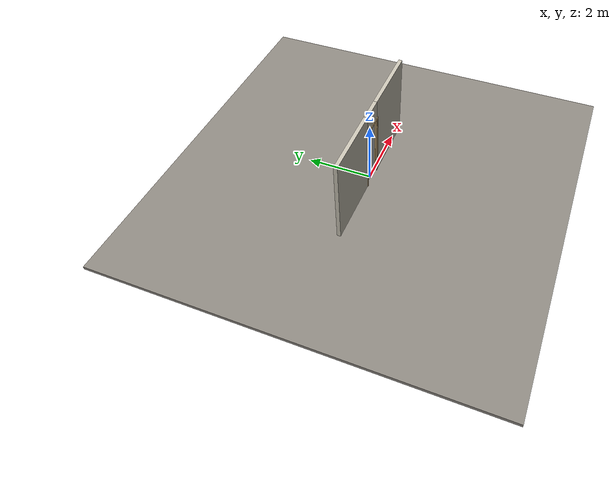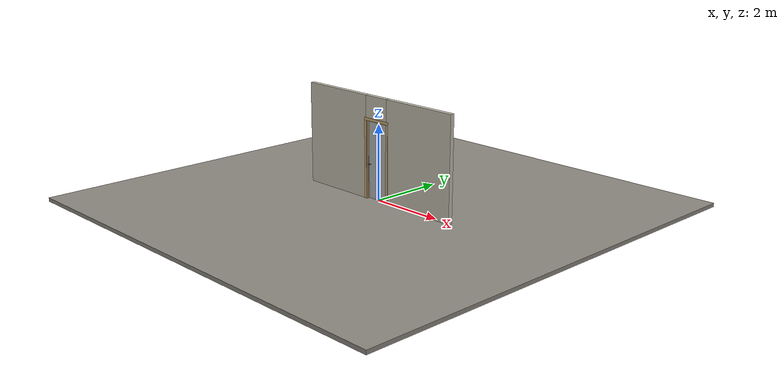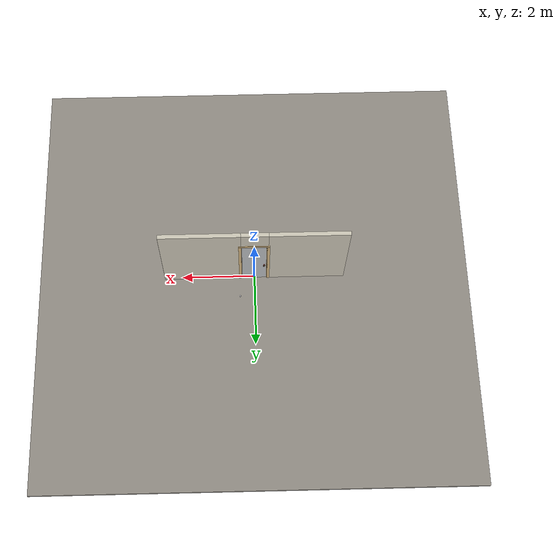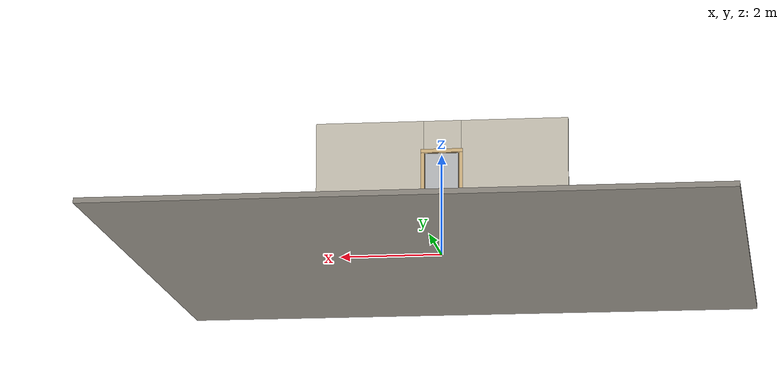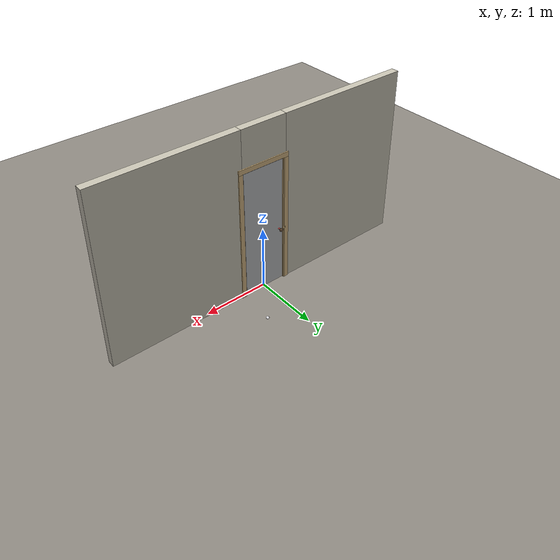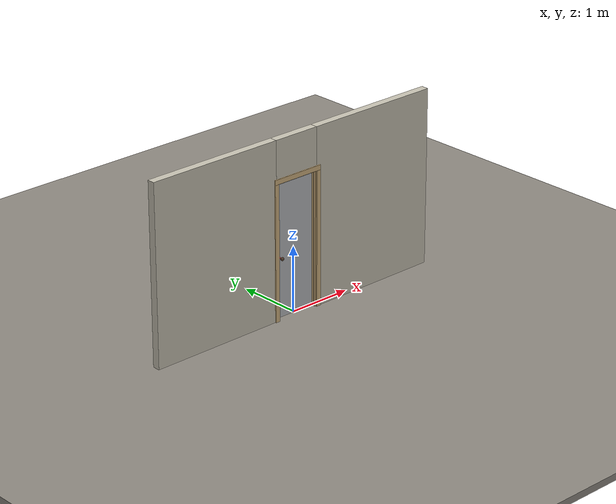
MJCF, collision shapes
<?xml version="1.0" ?>
<mujoco model="db0975_swing_single_full">
  <compiler angle="radian" meshdir="../../hardware" texturedir="../../textures" autolimits="true" inertiafromgeom="false"/>
  <option timestep="0.002" integrator="implicitfast" cone="elliptic" impratio="10" noslip_iterations="3">
    <flag multiccd="enable"/>
  </option>
  <size memory="16M"/>
  <default>
    <geom condim="4" solref="0.005 1" solimp="0.95 0.99 0.001"/>
    <joint solreflimit="0.005 1" solimplimit="0.95 0.99 0.001"/>
    <tendon solreflimit="0.005 1"/>
    <equality solref="0.002 1"/>
  </default>
  <visual>
    <headlight ambient="0.4 0.4 0.4" diffuse="0.7 0.7 0.7" specular="0.2 0.2 0.2"/>
    <quality shadowsize="4096"/>
    <map znear="0.01" zfar="60"/>
  </visual>
  <asset>
    <mesh name="hinge_e22b26c0c1" file="hinge_e22b26c0c1.obj"/>
    <mesh name="hinge_jamb_e1d088f8dc" file="hinge_jamb_e1d088f8dc.obj"/>
    <mesh name="knob_0ebdbe0e4b" file="knob_0ebdbe0e4b.obj"/>
    <material name="mat_floor" rgba="0.55 0.53 0.5 1" specular="0.2" shininess="0.15" reflectance="0"/>
    <material name="mat_wall" rgba="0.78 0.76 0.7 1" specular="0.2" shininess="0.1" reflectance="0"/>
    <material name="mat_leaf" rgba="0.72 0.73 0.74 1" specular="0.2" shininess="0.33" reflectance="0"/>
    <material name="mat_leaf_louver" rgba="0.612 0.62 0.629 1" specular="0.2" shininess="0.4" reflectance="0"/>
    <material name="mat_hinge" rgba="0.65 0.66 0.68 1" specular="0.74" shininess="0.5" reflectance="0.36"/>
    <material name="mat_op_bronze" rgba="0.3 0.22 0.15 1" specular="0.74" shininess="0.5" reflectance="0.36"/>
    <material name="mat_trim" rgba="0.85 0.66 0.3 1" specular="0.8" shininess="0.75" reflectance="0.4"/>
    <material name="mat_bolt" rgba="0.85 0.66 0.3 1" specular="0.8" shininess="0.75" reflectance="0.4"/>
    <material name="mat_frame" rgba="0.82 0.7 0.5 1" specular="0.2" shininess="0.45" reflectance="0"/>
    <material name="mat_seal" rgba="0.1 0.1 0.1 1" specular="0.2" shininess="0.1" reflectance="0"/>
    <material name="mat_stop" rgba="0.9 0.9 0.92 1" specular="0.8" shininess="0.9" reflectance="0.4"/>
    <texture name="skybox" type="skybox" builtin="gradient" rgb1="0.6 0.7 0.85" rgb2="0.9 0.92 0.95" width="256" height="256"/>
  </asset>
  <worldbody>
    <light name="sun" pos="1.5 -2.5 4" dir="-0.3 0.5 -0.8" directional="true" diffuse="0.8 0.8 0.8" specular="0.3 0.3 0.3" castshadow="true"/>
    <light name="fill" pos="-1.5 2.5 3" dir="0.3 -0.5 -0.7" directional="true" diffuse="0.35 0.35 0.4" castshadow="false"/>
    <camera name="robot_view" pos="0 -2.570688 1.734312" xyaxes="1 0 0 0 0.26963 0.962964" fovy="52"/>
    <camera name="far_view" pos="0 2.513687 1.734312" xyaxes="-1 0 0 0 -0.26963 0.962964" fovy="52"/>
    <camera name="iso" pos="-1.932062 -2.163938 2.141063" xyaxes="0.741536 -0.670913 0 0.242917 0.268487 0.932151" fovy="46"/>
    <camera name="detail_handle" pos="-0.089 -0.874 1.194" xyaxes="0.97561 0.219512 0 -0.070934 0.315262 0.94635" fovy="38"/>
    <geom name="floor" type="box" size="6 6 0.05" pos="0 0 -0.05" material="mat_floor" group="0" contype="1" conaffinity="1" friction="0.8 0.005 0.0001" density="2400"/>
    <geom name="wall_left" type="box" size="1.0585 0.0575 1.35" pos="-1.4415 -0.0285 1.35" material="mat_wall" group="0" contype="1" conaffinity="1" friction="0.6 0.005 0.0001" density="800"/>
    <geom name="wall_right" type="box" size="1.0735 0.0575 1.35" pos="1.4265 -0.0285 1.35" material="mat_wall" group="0" contype="1" conaffinity="1" friction="0.6 0.005 0.0001" density="800"/>
    <geom name="wall_header" type="box" size="0.368 0.0575 0.303" pos="-0.015 -0.0285 2.397" material="mat_wall" group="0" contype="1" conaffinity="1" friction="0.6 0.005 0.0001" density="800"/>
    <geom name="hinge_0_jamb" type="mesh" mesh="hinge_jamb_e1d088f8dc" pos="0.331 0.029 0.259" quat="0 0 0 1" material="mat_hinge" group="1" contype="0" conaffinity="0" density="7850"/>
    <geom name="hinge_1_jamb" type="mesh" mesh="hinge_jamb_e1d088f8dc" pos="0.331 0.029 1.025" quat="0 0 0 1" material="mat_hinge" group="1" contype="0" conaffinity="0" density="7850"/>
    <geom name="hinge_2_jamb" type="mesh" mesh="hinge_jamb_e1d088f8dc" pos="0.331 0.029 1.861" quat="0 0 0 1" material="mat_hinge" group="1" contype="0" conaffinity="0" density="7850"/>
    <geom name="jamb_hinge" type="box" size="0.0095 0.0575 1.0225" pos="0.3435 -0.0285 1.0225" material="mat_frame" group="0" contype="1" conaffinity="1" friction="0.6 0.005 0.0001" density="400"/>
    <geom name="strike_914_wall_n" type="box" size="0.0245 0.039075 0.0167" pos="-0.3585 -0.046925 0.914" material="mat_frame" group="0" contype="1" conaffinity="1" friction="0.6 0.005 0.0001" density="400"/>
    <geom name="strike_914_wall_p" type="box" size="0.0245 0.008 0.0167" pos="-0.3585 0.01585 0.914" material="mat_frame" group="0" contype="1" conaffinity="1" friction="0.6 0.005 0.0001" density="400"/>
    <geom name="strike_914_ramp" type="box" size="0.0245 0.01649 0.0167" pos="-0.363136 0.028673 0.914" quat="0.977148 0 0 0.212558" material="mat_frame" group="0" contype="1" conaffinity="1" friction="0.12 0.005 0.0001" density="400"/>
    <geom name="strike_914_back" type="box" size="0.01615 0.00785 0.0167" pos="-0.36685 0 0.914" material="mat_frame" group="0" contype="1" conaffinity="1" friction="0.6 0.005 0.0001" density="400"/>
    <geom name="jamb_strike_0" type="box" size="0.0245 0.0575 0.44865" pos="-0.3585 -0.0285 0.44865" material="mat_frame" group="0" contype="1" conaffinity="1" friction="0.6 0.005 0.0001" density="400"/>
    <geom name="jamb_strike_1" type="box" size="0.0245 0.0575 0.55715" pos="-0.3585 -0.0285 1.48785" material="mat_frame" group="0" contype="1" conaffinity="1" friction="0.6 0.005 0.0001" density="400"/>
    <geom name="jamb_head" type="box" size="0.368 0.0575 0.0095" pos="-0.015 -0.0285 2.0545" material="mat_frame" group="0" contype="1" conaffinity="1" friction="0.6 0.005 0.0001" density="400"/>
    <geom name="head_stud" type="box" size="0.368 0.0575 0.015" pos="-0.015 -0.0285 2.079" material="mat_wall" group="0" contype="1" conaffinity="1" friction="0.6 0.005 0.0001" density="500"/>
    <geom name="stop_hinge" type="box" size="0.0055 0.016 1.0225" pos="0.3285 -0.0385 1.0225" material="mat_frame" group="0" contype="1" conaffinity="1" friction="0.6 0.005 0.0001" density="400"/>
    <geom name="stop_strike" type="box" size="0.0055 0.016 1.0225" pos="-0.3285 -0.0385 1.0225" material="mat_frame" group="0" contype="1" conaffinity="1" friction="0.6 0.005 0.0001" density="400"/>
    <geom name="stop_head" type="box" size="0.334 0.016 0.0055" pos="0 -0.0385 2.0395" material="mat_frame" group="0" contype="1" conaffinity="1" friction="0.6 0.005 0.0001" density="400"/>
    <geom name="seal_hinge" type="box" size="0.004 0.002 1.0225" pos="0.331 -0.024 1.0225" material="mat_seal" group="1" contype="0" conaffinity="0" density="1100"/>
    <geom name="seal_strike" type="box" size="0.004 0.002 1.0225" pos="-0.331 -0.024 1.0225" material="mat_seal" group="1" contype="0" conaffinity="0" density="1100"/>
    <geom name="seal_head" type="box" size="0.314 0.002 0.008" pos="0 -0.024 2.033" material="mat_seal" group="1" contype="0" conaffinity="0" density="1100"/>
    <geom name="casing_l_n" type="box" size="0.035 0.008 1.032" pos="-0.383 -0.094 1.0225" material="mat_frame" group="2" contype="0" conaffinity="0" density="400"/>
    <geom name="casing_r_n" type="box" size="0.035 0.008 1.032" pos="0.383 -0.094 1.0225" material="mat_frame" group="2" contype="0" conaffinity="0" density="400"/>
    <geom name="casing_h_n" type="box" size="0.418 0.008 0.035" pos="0 -0.094 2.094" material="mat_frame" group="2" contype="0" conaffinity="0" density="400"/>
    <geom name="casing_l_p" type="box" size="0.035 0.008 1.032" pos="-0.383 0.037 1.0225" material="mat_frame" group="2" contype="0" conaffinity="0" density="400"/>
    <geom name="casing_r_p" type="box" size="0.035 0.008 1.032" pos="0.383 0.037 1.0225" material="mat_frame" group="2" contype="0" conaffinity="0" density="400"/>
    <geom name="casing_h_p" type="box" size="0.418 0.008 0.035" pos="0 0.037 2.094" material="mat_frame" group="2" contype="0" conaffinity="0" density="400"/>
    <geom name="floor_stop_dome" type="sphere" size="0.025" pos="0.399818 0.586122 0" material="mat_stop" group="0" contype="1" conaffinity="1" friction="0.6 0.005 0.0001" density="7000"/>
    <site name="approach_point" pos="0 -1.5 0" quat="1 0 0 0" size="0.05" rgba="0.2 0.9 0.2 0.5" group="4"/>
    <site name="goal_point" pos="0 1.5 0" quat="1 0 0 0" size="0.05" rgba="0.2 0.9 0.2 0.5" group="4"/>
    <site name="door_plane_center" pos="0 0 1.0225" quat="1 0 0 0" size="0.02" rgba="0.2 0.9 0.2 0.5" group="4"/>
    <body name="leaf" pos="0.334 0 0">
      <inertial pos="-0.32779 0.000288 1.02536" mass="44.54388" quat="0.499486 0.500729 -0.49926 0.500523" diaginertia="1.676351641 15.390979421 17.052419773"/>
      <joint name="leaf_hinge" type="hinge" axis="0 0 -1" pos="-0.003 0.029 0" limited="true" range="0 1.658063" solreflimit="0.02 1" damping="0.119633" frictionloss="1.555083" armature="0.02"/>
      <geom name="leaf_slab" type="box" size="0.33 0.022 1.016" pos="-0.333 0 1.025" material="mat_leaf" group="0" contype="1" conaffinity="1" friction="0.4 0.005 0.0001" density="1"/>
      <geom name="leaf_louver_0" type="box" size="0.24 0.002 0.026984" pos="-0.333 0 1.091339" quat="0.953717 0.300706 0 0" material="mat_leaf_louver" group="1" contype="0" conaffinity="0" density="1"/>
      <geom name="leaf_louver_1" type="box" size="0.24 0.002 0.026984" pos="-0.333 0 1.142736" quat="0.953717 0.300706 0 0" material="mat_leaf_louver" group="1" contype="0" conaffinity="0" density="1"/>
      <geom name="leaf_louver_2" type="box" size="0.24 0.002 0.026984" pos="-0.333 0 1.194134" quat="0.953717 0.300706 0 0" material="mat_leaf_louver" group="1" contype="0" conaffinity="0" density="1"/>
      <geom name="leaf_louver_3" type="box" size="0.24 0.002 0.026984" pos="-0.333 0 1.245532" quat="0.953717 0.300706 0 0" material="mat_leaf_louver" group="1" contype="0" conaffinity="0" density="1"/>
      <geom name="leaf_louver_4" type="box" size="0.24 0.002 0.026984" pos="-0.333 0 1.296929" quat="0.953717 0.300706 0 0" material="mat_leaf_louver" group="1" contype="0" conaffinity="0" density="1"/>
      <geom name="leaf_louver_5" type="box" size="0.24 0.002 0.026984" pos="-0.333 0 1.348327" quat="0.953717 0.300706 0 0" material="mat_leaf_louver" group="1" contype="0" conaffinity="0" density="1"/>
      <geom name="leaf_louver_6" type="box" size="0.24 0.002 0.026984" pos="-0.333 0 1.399725" quat="0.953717 0.300706 0 0" material="mat_leaf_louver" group="1" contype="0" conaffinity="0" density="1"/>
      <geom name="leaf_louver_7" type="box" size="0.24 0.002 0.026984" pos="-0.333 0 1.451122" quat="0.953717 0.300706 0 0" material="mat_leaf_louver" group="1" contype="0" conaffinity="0" density="1"/>
      <geom name="leaf_louver_8" type="box" size="0.24 0.002 0.026984" pos="-0.333 0 1.50252" quat="0.953717 0.300706 0 0" material="mat_leaf_louver" group="1" contype="0" conaffinity="0" density="1"/>
      <geom name="leaf_louver_9" type="box" size="0.24 0.002 0.026984" pos="-0.333 0 1.553918" quat="0.953717 0.300706 0 0" material="mat_leaf_louver" group="1" contype="0" conaffinity="0" density="1"/>
      <geom name="leaf_louver_10" type="box" size="0.24 0.002 0.026984" pos="-0.333 0 1.605315" quat="0.953717 0.300706 0 0" material="mat_leaf_louver" group="1" contype="0" conaffinity="0" density="1"/>
      <geom name="leaf_louver_11" type="box" size="0.24 0.002 0.026984" pos="-0.333 0 1.656713" quat="0.953717 0.300706 0 0" material="mat_leaf_louver" group="1" contype="0" conaffinity="0" density="1"/>
      <geom name="leaf_louver_12" type="box" size="0.24 0.002 0.026984" pos="-0.333 0 1.708111" quat="0.953717 0.300706 0 0" material="mat_leaf_louver" group="1" contype="0" conaffinity="0" density="1"/>
      <geom name="leaf_louver_13" type="box" size="0.24 0.002 0.026984" pos="-0.333 0 1.759508" quat="0.953717 0.300706 0 0" material="mat_leaf_louver" group="1" contype="0" conaffinity="0" density="1"/>
      <geom name="leaf_louver_14" type="box" size="0.24 0.002 0.026984" pos="-0.333 0 1.810906" quat="0.953717 0.300706 0 0" material="mat_leaf_louver" group="1" contype="0" conaffinity="0" density="1"/>
      <geom name="leaf_louver_15" type="box" size="0.24 0.002 0.026984" pos="-0.333 0 1.862304" quat="0.953717 0.300706 0 0" material="mat_leaf_louver" group="1" contype="0" conaffinity="0" density="1"/>
      <geom name="leaf_louver_16" type="box" size="0.24 0.002 0.026984" pos="-0.333 0 1.913701" quat="0.953717 0.300706 0 0" material="mat_leaf_louver" group="1" contype="0" conaffinity="0" density="1"/>
      <geom name="hinge_0" type="mesh" mesh="hinge_e22b26c0c1" pos="-0.003 0.029 0.259" quat="0 0 0 1" material="mat_hinge" group="1" contype="0" conaffinity="0" density="7850"/>
      <geom name="hinge_1" type="mesh" mesh="hinge_e22b26c0c1" pos="-0.003 0.029 1.025" quat="0 0 0 1" material="mat_hinge" group="1" contype="0" conaffinity="0" density="7850"/>
      <geom name="hinge_2" type="mesh" mesh="hinge_e22b26c0c1" pos="-0.003 0.029 1.861" quat="0 0 0 1" material="mat_hinge" group="1" contype="0" conaffinity="0" density="7850"/>
      <geom name="leaf_latch_bolt_faceplate" type="box" size="0.0006 0.01235 0.0267" pos="-0.6624 0 0.914" material="mat_bolt" group="1" contype="0" conaffinity="0" density="8500"/>
      <site name="leaf_edge_mid" pos="-0.663 0 1.016" quat="1 0 0 0" size="0.02" rgba="0.2 0.9 0.2 0.5" group="4"/>
      <body name="leaf_handle" pos="-0.603 0 0.914">
        <inertial pos="0 0 0" mass="1.22166" quat="0.707107 0 0 -0.707107" diaginertia="0.000321292 0.005491033 0.005491033"/>
        <joint name="leaf_handle_hinge" type="hinge" axis="0 1 0" limited="true" range="0 0.87" damping="0.143675" frictionloss="0.039" stiffness="0.5" springref="-0.5" armature="0.01"/>
        <geom name="leaf_handle_spindle" type="cylinder" size="0.006 0.03" pos="0 0 0" quat="0.707107 -0.707107 0 0" material="mat_op_bronze" group="1" contype="0" conaffinity="0" density="7850"/>
        <geom name="leaf_handle_knob_n" type="mesh" mesh="knob_0ebdbe0e4b" pos="0 -0.022 0" quat="0 0 -0.707107 0.707107" material="mat_op_bronze" group="1" contype="0" conaffinity="0" density="3000"/>
        <geom name="leaf_handle_knob_col_n" type="sphere" size="0.0252" pos="0 -0.074 0" material="mat_op_bronze" group="0" contype="1" conaffinity="1" friction="0.9 0.01 0.0001" density="3000"/>
        <geom name="leaf_handle_knob_neck_n" type="cylinder" size="0.011 0.012" pos="0 -0.034 0" quat="0.707107 -0.707107 0 0" material="mat_op_bronze" group="3" contype="1" conaffinity="1" rgba="0.8 0.3 0.3 0.25" friction="0.6 0.005 0.0001" density="3000"/>
        <geom name="leaf_handle_knob_p" type="mesh" mesh="knob_0ebdbe0e4b" pos="0 0.022 0" quat="0 0 0.707107 0.707107" material="mat_op_bronze" group="1" contype="0" conaffinity="0" density="3000"/>
        <geom name="leaf_handle_knob_col_p" type="sphere" size="0.0252" pos="0 0.074 0" material="mat_op_bronze" group="0" contype="1" conaffinity="1" friction="0.9 0.01 0.0001" density="3000"/>
        <geom name="leaf_handle_knob_neck_p" type="cylinder" size="0.011 0.012" pos="0 0.034 0" quat="0.707107 -0.707107 0 0" material="mat_op_bronze" group="3" contype="1" conaffinity="1" rgba="0.8 0.3 0.3 0.25" friction="0.6 0.005 0.0001" density="3000"/>
        <site name="leaf_handle_grip_n" pos="0 -0.074 0" quat="1 0 0 0" size="0.012" rgba="0.2 0.9 0.2 0.5" group="4"/>
        <site name="leaf_handle_grip_p" pos="0 0.074 0" quat="1 0 0 0" size="0.012" rgba="0.2 0.9 0.2 0.5" group="4"/>
      </body>
      <body name="leaf_latch_bolt" pos="-0.663 0 0.914">
        <inertial pos="0.00865 0 0" mass="0.041419" quat="0.92388 0.382683 0 0" diaginertia="0.000000798 0.000005598 0.000005598"/>
        <joint name="leaf_latch_bolt_slide" type="slide" axis="1 0 0" limited="true" range="0 0.0127" damping="2" frictionloss="0.3" stiffness="300" springref="-0.008333" armature="0.1"/>
        <geom name="leaf_latch_bolt_capsule" type="capsule" size="0.00635 0.015" pos="0.00865 0 0" quat="0.707107 0 -0.707107 0" material="mat_bolt" group="0" contype="1" conaffinity="1" friction="0.2 0.005 0.0001" density="8500"/>
      </body>
    </body>
  </worldbody>
  <tendon>
    <fixed name="leaf_latch_bolt_coupling" limited="true" range="0 10">
      <joint joint="leaf_latch_bolt_slide" coef="1"/>
      <joint joint="leaf_handle_hinge" coef="-0.015679"/>
    </fixed>
  </tendon>
  <sensor>
    <jointpos name="leaf_hinge_pos" joint="leaf_hinge"/>
    <jointvel name="leaf_hinge_vel" joint="leaf_hinge"/>
    <jointpos name="leaf_handle_hinge_pos" joint="leaf_handle_hinge"/>
    <jointvel name="leaf_handle_hinge_vel" joint="leaf_handle_hinge"/>
    <jointpos name="leaf_latch_bolt_slide_pos" joint="leaf_latch_bolt_slide"/>
    <jointvel name="leaf_latch_bolt_slide_vel" joint="leaf_latch_bolt_slide"/>
  </sensor>
</mujoco>
